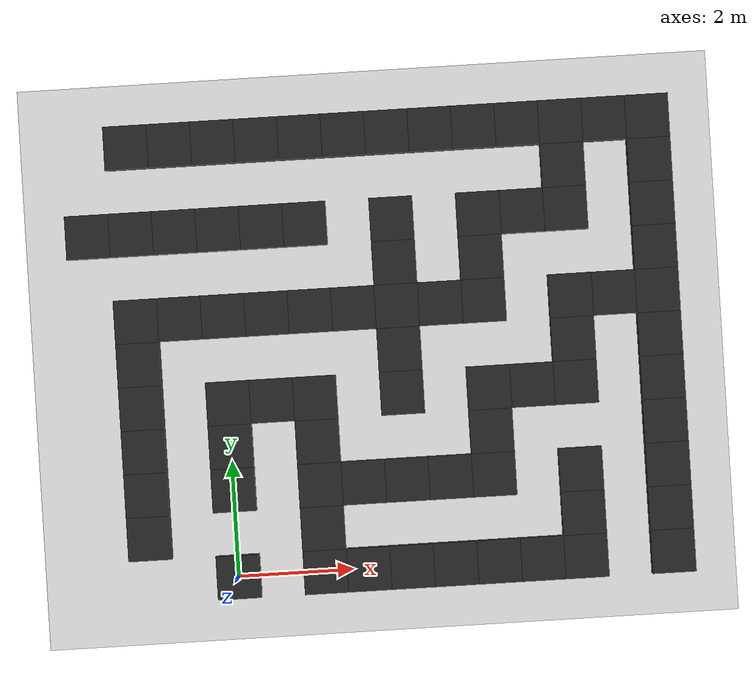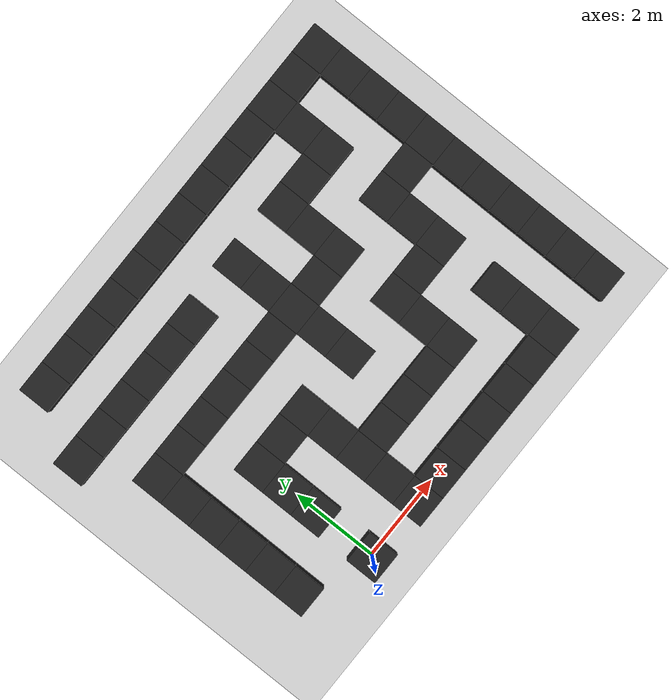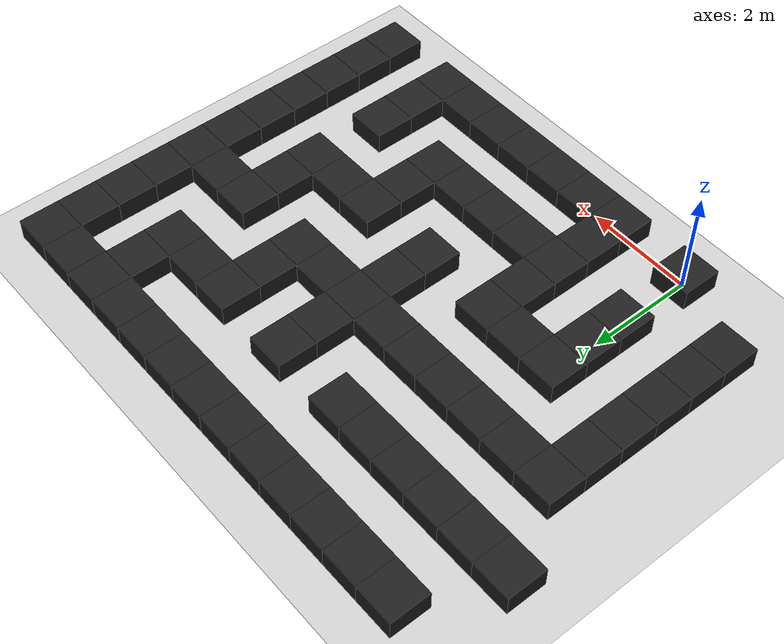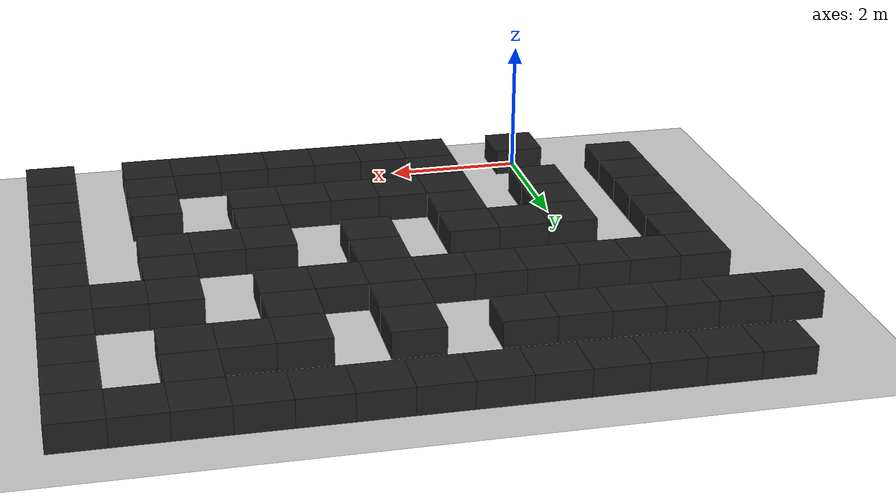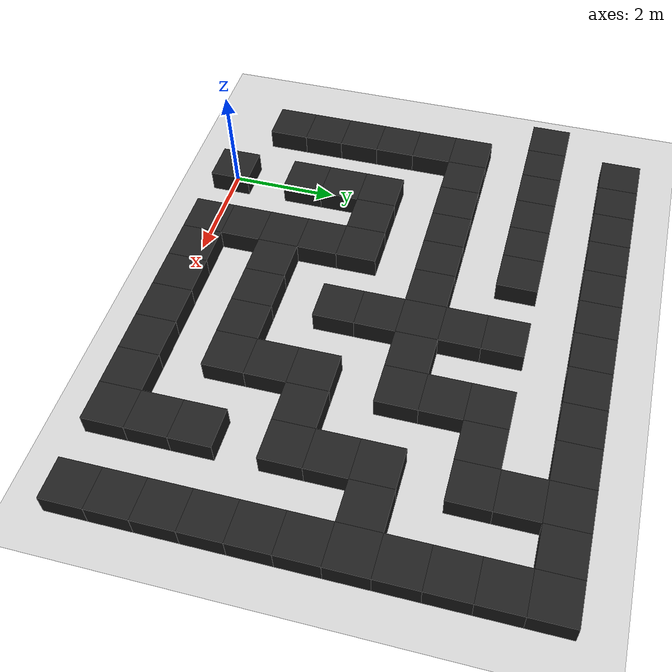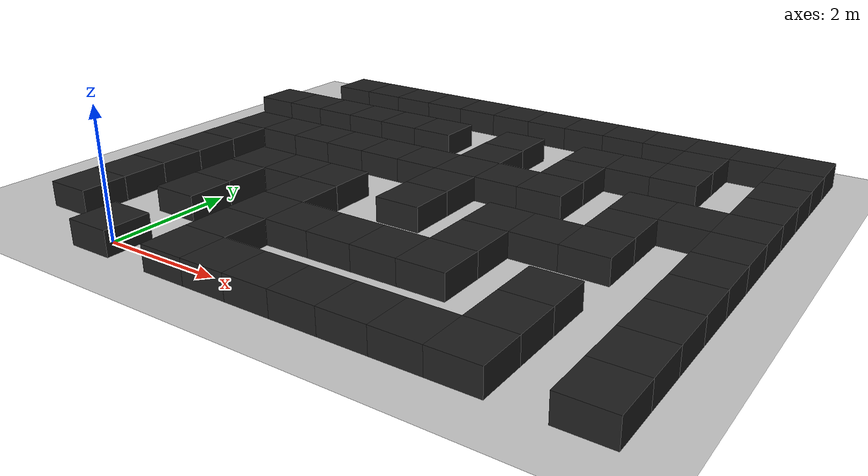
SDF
<sdf version="1.6">
 <world name="maze_gems">
  <include><uri>model://models/sun</uri></include>
  <include><uri>model://models/ground_plane</uri></include>
  <model name="walls">
   <static>true</static>
   <link name="wall_1">
    <pose>7.5 7.5 0.2 0 0 0</pose>
    <visual name="wall_1_visual">
     <geometry><box><size>0.75 0.75 0.4</size></box></geometry>
     <material>
      <script><uri>file://media/materials/scripts/gazebo.material</uri><name>Gazebo/Black</name></script>
     </material>
    </visual>
    <collision name="wall_1_collision"><geometry><box><size>0.75 0.75 0.4</size></box></geometry></collision>
   </link>
   <link name="wall_2">
    <pose>7.5 6.75 0.2 0 0 0</pose>
    <visual name="wall_2_visual">
     <geometry><box><size>0.75 0.75 0.4</size></box></geometry>
     <material>
      <script><uri>file://media/materials/scripts/gazebo.material</uri><name>Gazebo/Black</name></script>
     </material>
    </visual>
    <collision name="wall_2_collision"><geometry><box><size>0.75 0.75 0.4</size></box></geometry></collision>
   </link>
   <link name="wall_3">
    <pose>7.5 6.0 0.2 0 0 0</pose>
    <visual name="wall_3_visual">
     <geometry><box><size>0.75 0.75 0.4</size></box></geometry>
     <material>
      <script><uri>file://media/materials/scripts/gazebo.material</uri><name>Gazebo/Black</name></script>
     </material>
    </visual>
    <collision name="wall_3_collision"><geometry><box><size>0.75 0.75 0.4</size></box></geometry></collision>
   </link>
   <link name="wall_4">
    <pose>7.5 5.25 0.2 0 0 0</pose>
    <visual name="wall_4_visual">
     <geometry><box><size>0.75 0.75 0.4</size></box></geometry>
     <material>
      <script><uri>file://media/materials/scripts/gazebo.material</uri><name>Gazebo/Black</name></script>
     </material>
    </visual>
    <collision name="wall_4_collision"><geometry><box><size>0.75 0.75 0.4</size></box></geometry></collision>
   </link>
   <link name="wall_5">
    <pose>7.5 4.5 0.2 0 0 0</pose>
    <visual name="wall_5_visual">
     <geometry><box><size>0.75 0.75 0.4</size></box></geometry>
     <material>
      <script><uri>file://media/materials/scripts/gazebo.material</uri><name>Gazebo/Black</name></script>
     </material>
    </visual>
    <collision name="wall_5_collision"><geometry><box><size>0.75 0.75 0.4</size></box></geometry></collision>
   </link>
   <link name="wall_6">
    <pose>7.5 3.75 0.2 0 0 0</pose>
    <visual name="wall_6_visual">
     <geometry><box><size>0.75 0.75 0.4</size></box></geometry>
     <material>
      <script><uri>file://media/materials/scripts/gazebo.material</uri><name>Gazebo/Black</name></script>
     </material>
    </visual>
    <collision name="wall_6_collision"><geometry><box><size>0.75 0.75 0.4</size></box></geometry></collision>
   </link>
   <link name="wall_7">
    <pose>7.5 3.0 0.2 0 0 0</pose>
    <visual name="wall_7_visual">
     <geometry><box><size>0.75 0.75 0.4</size></box></geometry>
     <material>
      <script><uri>file://media/materials/scripts/gazebo.material</uri><name>Gazebo/Black</name></script>
     </material>
    </visual>
    <collision name="wall_7_collision"><geometry><box><size>0.75 0.75 0.4</size></box></geometry></collision>
   </link>
   <link name="wall_8">
    <pose>7.5 2.25 0.2 0 0 0</pose>
    <visual name="wall_8_visual">
     <geometry><box><size>0.75 0.75 0.4</size></box></geometry>
     <material>
      <script><uri>file://media/materials/scripts/gazebo.material</uri><name>Gazebo/Black</name></script>
     </material>
    </visual>
    <collision name="wall_8_collision"><geometry><box><size>0.75 0.75 0.4</size></box></geometry></collision>
   </link>
   <link name="wall_9">
    <pose>7.5 1.5 0.2 0 0 0</pose>
    <visual name="wall_9_visual">
     <geometry><box><size>0.75 0.75 0.4</size></box></geometry>
     <material>
      <script><uri>file://media/materials/scripts/gazebo.material</uri><name>Gazebo/Black</name></script>
     </material>
    </visual>
    <collision name="wall_9_collision"><geometry><box><size>0.75 0.75 0.4</size></box></geometry></collision>
   </link>
   <link name="wall_10">
    <pose>7.5 0.75 0.2 0 0 0</pose>
    <visual name="wall_10_visual">
     <geometry><box><size>0.75 0.75 0.4</size></box></geometry>
     <material>
      <script><uri>file://media/materials/scripts/gazebo.material</uri><name>Gazebo/Black</name></script>
     </material>
    </visual>
    <collision name="wall_10_collision"><geometry><box><size>0.75 0.75 0.4</size></box></geometry></collision>
   </link>
   <link name="wall_11">
    <pose>7.5 0.0 0.2 0 0 0</pose>
    <visual name="wall_11_visual">
     <geometry><box><size>0.75 0.75 0.4</size></box></geometry>
     <material>
      <script><uri>file://media/materials/scripts/gazebo.material</uri><name>Gazebo/Black</name></script>
     </material>
    </visual>
    <collision name="wall_11_collision"><geometry><box><size>0.75 0.75 0.4</size></box></geometry></collision>
   </link>
   <link name="wall_22">
    <pose>6.75 7.5 0.2 0 0 0</pose>
    <visual name="wall_22_visual">
     <geometry><box><size>0.75 0.75 0.4</size></box></geometry>
     <material>
      <script><uri>file://media/materials/scripts/gazebo.material</uri><name>Gazebo/Black</name></script>
     </material>
    </visual>
    <collision name="wall_22_collision"><geometry><box><size>0.75 0.75 0.4</size></box></geometry></collision>
   </link>
   <link name="wall_23">
    <pose>6.75 4.5 0.2 0 0 0</pose>
    <visual name="wall_23_visual">
     <geometry><box><size>0.75 0.75 0.4</size></box></geometry>
     <material>
      <script><uri>file://media/materials/scripts/gazebo.material</uri><name>Gazebo/Black</name></script>
     </material>
    </visual>
    <collision name="wall_23_collision"><geometry><box><size>0.75 0.75 0.4</size></box></geometry></collision>
   </link>
   <link name="wall_26">
    <pose>6.0 7.5 0.2 0 0 0</pose>
    <visual name="wall_26_visual">
     <geometry><box><size>0.75 0.75 0.4</size></box></geometry>
     <material>
      <script><uri>file://media/materials/scripts/gazebo.material</uri><name>Gazebo/Black</name></script>
     </material>
    </visual>
    <collision name="wall_26_collision"><geometry><box><size>0.75 0.75 0.4</size></box></geometry></collision>
   </link>
   <link name="wall_27">
    <pose>6.0 6.75 0.2 0 0 0</pose>
    <visual name="wall_27_visual">
     <geometry><box><size>0.75 0.75 0.4</size></box></geometry>
     <material>
      <script><uri>file://media/materials/scripts/gazebo.material</uri><name>Gazebo/Black</name></script>
     </material>
    </visual>
    <collision name="wall_27_collision"><geometry><box><size>0.75 0.75 0.4</size></box></geometry></collision>
   </link>
   <link name="wall_28">
    <pose>6.0 6.0 0.2 0 0 0</pose>
    <visual name="wall_28_visual">
     <geometry><box><size>0.75 0.75 0.4</size></box></geometry>
     <material>
      <script><uri>file://media/materials/scripts/gazebo.material</uri><name>Gazebo/Black</name></script>
     </material>
    </visual>
    <collision name="wall_28_collision"><geometry><box><size>0.75 0.75 0.4</size></box></geometry></collision>
   </link>
   <link name="wall_29">
    <pose>6.0 4.5 0.2 0 0 0</pose>
    <visual name="wall_29_visual">
     <geometry><box><size>0.75 0.75 0.4</size></box></geometry>
     <material>
      <script><uri>file://media/materials/scripts/gazebo.material</uri><name>Gazebo/Black</name></script>
     </material>
    </visual>
    <collision name="wall_29_collision"><geometry><box><size>0.75 0.75 0.4</size></box></geometry></collision>
   </link>
   <link name="wall_30">
    <pose>6.0 3.75 0.2 0 0 0</pose>
    <visual name="wall_30_visual">
     <geometry><box><size>0.75 0.75 0.4</size></box></geometry>
     <material>
      <script><uri>file://media/materials/scripts/gazebo.material</uri><name>Gazebo/Black</name></script>
     </material>
    </visual>
    <collision name="wall_30_collision"><geometry><box><size>0.75 0.75 0.4</size></box></geometry></collision>
   </link>
   <link name="wall_31">
    <pose>6.0 3.0 0.2 0 0 0</pose>
    <visual name="wall_31_visual">
     <geometry><box><size>0.75 0.75 0.4</size></box></geometry>
     <material>
      <script><uri>file://media/materials/scripts/gazebo.material</uri><name>Gazebo/Black</name></script>
     </material>
    </visual>
    <collision name="wall_31_collision"><geometry><box><size>0.75 0.75 0.4</size></box></geometry></collision>
   </link>
   <link name="wall_32">
    <pose>6.0 1.5 0.2 0 0 0</pose>
    <visual name="wall_32_visual">
     <geometry><box><size>0.75 0.75 0.4</size></box></geometry>
     <material>
      <script><uri>file://media/materials/scripts/gazebo.material</uri><name>Gazebo/Black</name></script>
     </material>
    </visual>
    <collision name="wall_32_collision"><geometry><box><size>0.75 0.75 0.4</size></box></geometry></collision>
   </link>
   <link name="wall_33">
    <pose>6.0 0.75 0.2 0 0 0</pose>
    <visual name="wall_33_visual">
     <geometry><box><size>0.75 0.75 0.4</size></box></geometry>
     <material>
      <script><uri>file://media/materials/scripts/gazebo.material</uri><name>Gazebo/Black</name></script>
     </material>
    </visual>
    <collision name="wall_33_collision"><geometry><box><size>0.75 0.75 0.4</size></box></geometry></collision>
   </link>
   <link name="wall_34">
    <pose>6.0 0.0 0.2 0 0 0</pose>
    <visual name="wall_34_visual">
     <geometry><box><size>0.75 0.75 0.4</size></box></geometry>
     <material>
      <script><uri>file://media/materials/scripts/gazebo.material</uri><name>Gazebo/Black</name></script>
     </material>
    </visual>
    <collision name="wall_34_collision"><geometry><box><size>0.75 0.75 0.4</size></box></geometry></collision>
   </link>
   <link name="wall_41">
    <pose>5.25 7.5 0.2 0 0 0</pose>
    <visual name="wall_41_visual">
     <geometry><box><size>0.75 0.75 0.4</size></box></geometry>
     <material>
      <script><uri>file://media/materials/scripts/gazebo.material</uri><name>Gazebo/Black</name></script>
     </material>
    </visual>
    <collision name="wall_41_collision"><geometry><box><size>0.75 0.75 0.4</size></box></geometry></collision>
   </link>
   <link name="wall_42">
    <pose>5.25 6.0 0.2 0 0 0</pose>
    <visual name="wall_42_visual">
     <geometry><box><size>0.75 0.75 0.4</size></box></geometry>
     <material>
      <script><uri>file://media/materials/scripts/gazebo.material</uri><name>Gazebo/Black</name></script>
     </material>
    </visual>
    <collision name="wall_42_collision"><geometry><box><size>0.75 0.75 0.4</size></box></geometry></collision>
   </link>
   <link name="wall_43">
    <pose>5.25 3.0 0.2 0 0 0</pose>
    <visual name="wall_43_visual">
     <geometry><box><size>0.75 0.75 0.4</size></box></geometry>
     <material>
      <script><uri>file://media/materials/scripts/gazebo.material</uri><name>Gazebo/Black</name></script>
     </material>
    </visual>
    <collision name="wall_43_collision"><geometry><box><size>0.75 0.75 0.4</size></box></geometry></collision>
   </link>
   <link name="wall_44">
    <pose>5.25 0.0 0.2 0 0 0</pose>
    <visual name="wall_44_visual">
     <geometry><box><size>0.75 0.75 0.4</size></box></geometry>
     <material>
      <script><uri>file://media/materials/scripts/gazebo.material</uri><name>Gazebo/Black</name></script>
     </material>
    </visual>
    <collision name="wall_44_collision"><geometry><box><size>0.75 0.75 0.4</size></box></geometry></collision>
   </link>
   <link name="wall_49">
    <pose>4.5 7.5 0.2 0 0 0</pose>
    <visual name="wall_49_visual">
     <geometry><box><size>0.75 0.75 0.4</size></box></geometry>
     <material>
      <script><uri>file://media/materials/scripts/gazebo.material</uri><name>Gazebo/Black</name></script>
     </material>
    </visual>
    <collision name="wall_49_collision"><geometry><box><size>0.75 0.75 0.4</size></box></geometry></collision>
   </link>
   <link name="wall_50">
    <pose>4.5 6.0 0.2 0 0 0</pose>
    <visual name="wall_50_visual">
     <geometry><box><size>0.75 0.75 0.4</size></box></geometry>
     <material>
      <script><uri>file://media/materials/scripts/gazebo.material</uri><name>Gazebo/Black</name></script>
     </material>
    </visual>
    <collision name="wall_50_collision"><geometry><box><size>0.75 0.75 0.4</size></box></geometry></collision>
   </link>
   <link name="wall_51">
    <pose>4.5 5.25 0.2 0 0 0</pose>
    <visual name="wall_51_visual">
     <geometry><box><size>0.75 0.75 0.4</size></box></geometry>
     <material>
      <script><uri>file://media/materials/scripts/gazebo.material</uri><name>Gazebo/Black</name></script>
     </material>
    </visual>
    <collision name="wall_51_collision"><geometry><box><size>0.75 0.75 0.4</size></box></geometry></collision>
   </link>
   <link name="wall_52">
    <pose>4.5 4.5 0.2 0 0 0</pose>
    <visual name="wall_52_visual">
     <geometry><box><size>0.75 0.75 0.4</size></box></geometry>
     <material>
      <script><uri>file://media/materials/scripts/gazebo.material</uri><name>Gazebo/Black</name></script>
     </material>
    </visual>
    <collision name="wall_52_collision"><geometry><box><size>0.75 0.75 0.4</size></box></geometry></collision>
   </link>
   <link name="wall_53">
    <pose>4.5 3.0 0.2 0 0 0</pose>
    <visual name="wall_53_visual">
     <geometry><box><size>0.75 0.75 0.4</size></box></geometry>
     <material>
      <script><uri>file://media/materials/scripts/gazebo.material</uri><name>Gazebo/Black</name></script>
     </material>
    </visual>
    <collision name="wall_53_collision"><geometry><box><size>0.75 0.75 0.4</size></box></geometry></collision>
   </link>
   <link name="wall_54">
    <pose>4.5 2.25 0.2 0 0 0</pose>
    <visual name="wall_54_visual">
     <geometry><box><size>0.75 0.75 0.4</size></box></geometry>
     <material>
      <script><uri>file://media/materials/scripts/gazebo.material</uri><name>Gazebo/Black</name></script>
     </material>
    </visual>
    <collision name="wall_54_collision"><geometry><box><size>0.75 0.75 0.4</size></box></geometry></collision>
   </link>
   <link name="wall_55">
    <pose>4.5 1.5 0.2 0 0 0</pose>
    <visual name="wall_55_visual">
     <geometry><box><size>0.75 0.75 0.4</size></box></geometry>
     <material>
      <script><uri>file://media/materials/scripts/gazebo.material</uri><name>Gazebo/Black</name></script>
     </material>
    </visual>
    <collision name="wall_55_collision"><geometry><box><size>0.75 0.75 0.4</size></box></geometry></collision>
   </link>
   <link name="wall_56">
    <pose>4.5 0.0 0.2 0 0 0</pose>
    <visual name="wall_56_visual">
     <geometry><box><size>0.75 0.75 0.4</size></box></geometry>
     <material>
      <script><uri>file://media/materials/scripts/gazebo.material</uri><name>Gazebo/Black</name></script>
     </material>
    </visual>
    <collision name="wall_56_collision"><geometry><box><size>0.75 0.75 0.4</size></box></geometry></collision>
   </link>
   <link name="wall_63">
    <pose>3.75 7.5 0.2 0 0 0</pose>
    <visual name="wall_63_visual">
     <geometry><box><size>0.75 0.75 0.4</size></box></geometry>
     <material>
      <script><uri>file://media/materials/scripts/gazebo.material</uri><name>Gazebo/Black</name></script>
     </material>
    </visual>
    <collision name="wall_63_collision"><geometry><box><size>0.75 0.75 0.4</size></box></geometry></collision>
   </link>
   <link name="wall_64">
    <pose>3.75 4.5 0.2 0 0 0</pose>
    <visual name="wall_64_visual">
     <geometry><box><size>0.75 0.75 0.4</size></box></geometry>
     <material>
      <script><uri>file://media/materials/scripts/gazebo.material</uri><name>Gazebo/Black</name></script>
     </material>
    </visual>
    <collision name="wall_64_collision"><geometry><box><size>0.75 0.75 0.4</size></box></geometry></collision>
   </link>
   <link name="wall_65">
    <pose>3.75 1.5 0.2 0 0 0</pose>
    <visual name="wall_65_visual">
     <geometry><box><size>0.75 0.75 0.4</size></box></geometry>
     <material>
      <script><uri>file://media/materials/scripts/gazebo.material</uri><name>Gazebo/Black</name></script>
     </material>
    </visual>
    <collision name="wall_65_collision"><geometry><box><size>0.75 0.75 0.4</size></box></geometry></collision>
   </link>
   <link name="wall_66">
    <pose>3.75 0.0 0.2 0 0 0</pose>
    <visual name="wall_66_visual">
     <geometry><box><size>0.75 0.75 0.4</size></box></geometry>
     <material>
      <script><uri>file://media/materials/scripts/gazebo.material</uri><name>Gazebo/Black</name></script>
     </material>
    </visual>
    <collision name="wall_66_collision"><geometry><box><size>0.75 0.75 0.4</size></box></geometry></collision>
   </link>
   <link name="wall_71">
    <pose>3.0 7.5 0.2 0 0 0</pose>
    <visual name="wall_71_visual">
     <geometry><box><size>0.75 0.75 0.4</size></box></geometry>
     <material>
      <script><uri>file://media/materials/scripts/gazebo.material</uri><name>Gazebo/Black</name></script>
     </material>
    </visual>
    <collision name="wall_71_collision"><geometry><box><size>0.75 0.75 0.4</size></box></geometry></collision>
   </link>
   <link name="wall_72">
    <pose>3.0 6.0 0.2 0 0 0</pose>
    <visual name="wall_72_visual">
     <geometry><box><size>0.75 0.75 0.4</size></box></geometry>
     <material>
      <script><uri>file://media/materials/scripts/gazebo.material</uri><name>Gazebo/Black</name></script>
     </material>
    </visual>
    <collision name="wall_72_collision"><geometry><box><size>0.75 0.75 0.4</size></box></geometry></collision>
   </link>
   <link name="wall_73">
    <pose>3.0 5.25 0.2 0 0 0</pose>
    <visual name="wall_73_visual">
     <geometry><box><size>0.75 0.75 0.4</size></box></geometry>
     <material>
      <script><uri>file://media/materials/scripts/gazebo.material</uri><name>Gazebo/Black</name></script>
     </material>
    </visual>
    <collision name="wall_73_collision"><geometry><box><size>0.75 0.75 0.4</size></box></geometry></collision>
   </link>
   <link name="wall_74">
    <pose>3.0 4.5 0.2 0 0 0</pose>
    <visual name="wall_74_visual">
     <geometry><box><size>0.75 0.75 0.4</size></box></geometry>
     <material>
      <script><uri>file://media/materials/scripts/gazebo.material</uri><name>Gazebo/Black</name></script>
     </material>
    </visual>
    <collision name="wall_74_collision"><geometry><box><size>0.75 0.75 0.4</size></box></geometry></collision>
   </link>
   <link name="wall_75">
    <pose>3.0 3.75 0.2 0 0 0</pose>
    <visual name="wall_75_visual">
     <geometry><box><size>0.75 0.75 0.4</size></box></geometry>
     <material>
      <script><uri>file://media/materials/scripts/gazebo.material</uri><name>Gazebo/Black</name></script>
     </material>
    </visual>
    <collision name="wall_75_collision"><geometry><box><size>0.75 0.75 0.4</size></box></geometry></collision>
   </link>
   <link name="wall_76">
    <pose>3.0 3.0 0.2 0 0 0</pose>
    <visual name="wall_76_visual">
     <geometry><box><size>0.75 0.75 0.4</size></box></geometry>
     <material>
      <script><uri>file://media/materials/scripts/gazebo.material</uri><name>Gazebo/Black</name></script>
     </material>
    </visual>
    <collision name="wall_76_collision"><geometry><box><size>0.75 0.75 0.4</size></box></geometry></collision>
   </link>
   <link name="wall_77">
    <pose>3.0 1.5 0.2 0 0 0</pose>
    <visual name="wall_77_visual">
     <geometry><box><size>0.75 0.75 0.4</size></box></geometry>
     <material>
      <script><uri>file://media/materials/scripts/gazebo.material</uri><name>Gazebo/Black</name></script>
     </material>
    </visual>
    <collision name="wall_77_collision"><geometry><box><size>0.75 0.75 0.4</size></box></geometry></collision>
   </link>
   <link name="wall_78">
    <pose>3.0 0.0 0.2 0 0 0</pose>
    <visual name="wall_78_visual">
     <geometry><box><size>0.75 0.75 0.4</size></box></geometry>
     <material>
      <script><uri>file://media/materials/scripts/gazebo.material</uri><name>Gazebo/Black</name></script>
     </material>
    </visual>
    <collision name="wall_78_collision"><geometry><box><size>0.75 0.75 0.4</size></box></geometry></collision>
   </link>
   <link name="wall_85">
    <pose>2.25 7.5 0.2 0 0 0</pose>
    <visual name="wall_85_visual">
     <geometry><box><size>0.75 0.75 0.4</size></box></geometry>
     <material>
      <script><uri>file://media/materials/scripts/gazebo.material</uri><name>Gazebo/Black</name></script>
     </material>
    </visual>
    <collision name="wall_85_collision"><geometry><box><size>0.75 0.75 0.4</size></box></geometry></collision>
   </link>
   <link name="wall_86">
    <pose>2.25 4.5 0.2 0 0 0</pose>
    <visual name="wall_86_visual">
     <geometry><box><size>0.75 0.75 0.4</size></box></geometry>
     <material>
      <script><uri>file://media/materials/scripts/gazebo.material</uri><name>Gazebo/Black</name></script>
     </material>
    </visual>
    <collision name="wall_86_collision"><geometry><box><size>0.75 0.75 0.4</size></box></geometry></collision>
   </link>
   <link name="wall_87">
    <pose>2.25 1.5 0.2 0 0 0</pose>
    <visual name="wall_87_visual">
     <geometry><box><size>0.75 0.75 0.4</size></box></geometry>
     <material>
      <script><uri>file://media/materials/scripts/gazebo.material</uri><name>Gazebo/Black</name></script>
     </material>
    </visual>
    <collision name="wall_87_collision"><geometry><box><size>0.75 0.75 0.4</size></box></geometry></collision>
   </link>
   <link name="wall_88">
    <pose>2.25 0.0 0.2 0 0 0</pose>
    <visual name="wall_88_visual">
     <geometry><box><size>0.75 0.75 0.4</size></box></geometry>
     <material>
      <script><uri>file://media/materials/scripts/gazebo.material</uri><name>Gazebo/Black</name></script>
     </material>
    </visual>
    <collision name="wall_88_collision"><geometry><box><size>0.75 0.75 0.4</size></box></geometry></collision>
   </link>
   <link name="wall_94">
    <pose>1.5 7.5 0.2 0 0 0</pose>
    <visual name="wall_94_visual">
     <geometry><box><size>0.75 0.75 0.4</size></box></geometry>
     <material>
      <script><uri>file://media/materials/scripts/gazebo.material</uri><name>Gazebo/Black</name></script>
     </material>
    </visual>
    <collision name="wall_94_collision"><geometry><box><size>0.75 0.75 0.4</size></box></geometry></collision>
   </link>
   <link name="wall_95">
    <pose>1.5 6.0 0.2 0 0 0</pose>
    <visual name="wall_95_visual">
     <geometry><box><size>0.75 0.75 0.4</size></box></geometry>
     <material>
      <script><uri>file://media/materials/scripts/gazebo.material</uri><name>Gazebo/Black</name></script>
     </material>
    </visual>
    <collision name="wall_95_collision"><geometry><box><size>0.75 0.75 0.4</size></box></geometry></collision>
   </link>
   <link name="wall_96">
    <pose>1.5 4.5 0.2 0 0 0</pose>
    <visual name="wall_96_visual">
     <geometry><box><size>0.75 0.75 0.4</size></box></geometry>
     <material>
      <script><uri>file://media/materials/scripts/gazebo.material</uri><name>Gazebo/Black</name></script>
     </material>
    </visual>
    <collision name="wall_96_collision"><geometry><box><size>0.75 0.75 0.4</size></box></geometry></collision>
   </link>
   <link name="wall_97">
    <pose>1.5 3.0 0.2 0 0 0</pose>
    <visual name="wall_97_visual">
     <geometry><box><size>0.75 0.75 0.4</size></box></geometry>
     <material>
      <script><uri>file://media/materials/scripts/gazebo.material</uri><name>Gazebo/Black</name></script>
     </material>
    </visual>
    <collision name="wall_97_collision"><geometry><box><size>0.75 0.75 0.4</size></box></geometry></collision>
   </link>
   <link name="wall_98">
    <pose>1.5 2.25 0.2 0 0 0</pose>
    <visual name="wall_98_visual">
     <geometry><box><size>0.75 0.75 0.4</size></box></geometry>
     <material>
      <script><uri>file://media/materials/scripts/gazebo.material</uri><name>Gazebo/Black</name></script>
     </material>
    </visual>
    <collision name="wall_98_collision"><geometry><box><size>0.75 0.75 0.4</size></box></geometry></collision>
   </link>
   <link name="wall_99">
    <pose>1.5 1.5 0.2 0 0 0</pose>
    <visual name="wall_99_visual">
     <geometry><box><size>0.75 0.75 0.4</size></box></geometry>
     <material>
      <script><uri>file://media/materials/scripts/gazebo.material</uri><name>Gazebo/Black</name></script>
     </material>
    </visual>
    <collision name="wall_99_collision"><geometry><box><size>0.75 0.75 0.4</size></box></geometry></collision>
   </link>
   <link name="wall_100">
    <pose>1.5 0.75 0.2 0 0 0</pose>
    <visual name="wall_100_visual">
     <geometry><box><size>0.75 0.75 0.4</size></box></geometry>
     <material>
      <script><uri>file://media/materials/scripts/gazebo.material</uri><name>Gazebo/Black</name></script>
     </material>
    </visual>
    <collision name="wall_100_collision"><geometry><box><size>0.75 0.75 0.4</size></box></geometry></collision>
   </link>
   <link name="wall_101">
    <pose>1.5 0.0 0.2 0 0 0</pose>
    <visual name="wall_101_visual">
     <geometry><box><size>0.75 0.75 0.4</size></box></geometry>
     <material>
      <script><uri>file://media/materials/scripts/gazebo.material</uri><name>Gazebo/Black</name></script>
     </material>
    </visual>
    <collision name="wall_101_collision"><geometry><box><size>0.75 0.75 0.4</size></box></geometry></collision>
   </link>
   <link name="wall_107">
    <pose>0.75 7.5 0.2 0 0 0</pose>
    <visual name="wall_107_visual">
     <geometry><box><size>0.75 0.75 0.4</size></box></geometry>
     <material>
      <script><uri>file://media/materials/scripts/gazebo.material</uri><name>Gazebo/Black</name></script>
     </material>
    </visual>
    <collision name="wall_107_collision"><geometry><box><size>0.75 0.75 0.4</size></box></geometry></collision>
   </link>
   <link name="wall_108">
    <pose>0.75 6.0 0.2 0 0 0</pose>
    <visual name="wall_108_visual">
     <geometry><box><size>0.75 0.75 0.4</size></box></geometry>
     <material>
      <script><uri>file://media/materials/scripts/gazebo.material</uri><name>Gazebo/Black</name></script>
     </material>
    </visual>
    <collision name="wall_108_collision"><geometry><box><size>0.75 0.75 0.4</size></box></geometry></collision>
   </link>
   <link name="wall_109">
    <pose>0.75 4.5 0.2 0 0 0</pose>
    <visual name="wall_109_visual">
     <geometry><box><size>0.75 0.75 0.4</size></box></geometry>
     <material>
      <script><uri>file://media/materials/scripts/gazebo.material</uri><name>Gazebo/Black</name></script>
     </material>
    </visual>
    <collision name="wall_109_collision"><geometry><box><size>0.75 0.75 0.4</size></box></geometry></collision>
   </link>
   <link name="wall_110">
    <pose>0.75 3.0 0.2 0 0 0</pose>
    <visual name="wall_110_visual">
     <geometry><box><size>0.75 0.75 0.4</size></box></geometry>
     <material>
      <script><uri>file://media/materials/scripts/gazebo.material</uri><name>Gazebo/Black</name></script>
     </material>
    </visual>
    <collision name="wall_110_collision"><geometry><box><size>0.75 0.75 0.4</size></box></geometry></collision>
   </link>
   <link name="wall_115">
    <pose>0.0 7.5 0.2 0 0 0</pose>
    <visual name="wall_115_visual">
     <geometry><box><size>0.75 0.75 0.4</size></box></geometry>
     <material>
      <script><uri>file://media/materials/scripts/gazebo.material</uri><name>Gazebo/Black</name></script>
     </material>
    </visual>
    <collision name="wall_115_collision"><geometry><box><size>0.75 0.75 0.4</size></box></geometry></collision>
   </link>
   <link name="wall_116">
    <pose>0.0 6.0 0.2 0 0 0</pose>
    <visual name="wall_116_visual">
     <geometry><box><size>0.75 0.75 0.4</size></box></geometry>
     <material>
      <script><uri>file://media/materials/scripts/gazebo.material</uri><name>Gazebo/Black</name></script>
     </material>
    </visual>
    <collision name="wall_116_collision"><geometry><box><size>0.75 0.75 0.4</size></box></geometry></collision>
   </link>
   <link name="wall_117">
    <pose>0.0 4.5 0.2 0 0 0</pose>
    <visual name="wall_117_visual">
     <geometry><box><size>0.75 0.75 0.4</size></box></geometry>
     <material>
      <script><uri>file://media/materials/scripts/gazebo.material</uri><name>Gazebo/Black</name></script>
     </material>
    </visual>
    <collision name="wall_117_collision"><geometry><box><size>0.75 0.75 0.4</size></box></geometry></collision>
   </link>
   <link name="wall_118">
    <pose>0.0 3.0 0.2 0 0 0</pose>
    <visual name="wall_118_visual">
     <geometry><box><size>0.75 0.75 0.4</size></box></geometry>
     <material>
      <script><uri>file://media/materials/scripts/gazebo.material</uri><name>Gazebo/Black</name></script>
     </material>
    </visual>
    <collision name="wall_118_collision"><geometry><box><size>0.75 0.75 0.4</size></box></geometry></collision>
   </link>
   <link name="wall_119">
    <pose>0.0 2.25 0.2 0 0 0</pose>
    <visual name="wall_119_visual">
     <geometry><box><size>0.75 0.75 0.4</size></box></geometry>
     <material>
      <script><uri>file://media/materials/scripts/gazebo.material</uri><name>Gazebo/Black</name></script>
     </material>
    </visual>
    <collision name="wall_119_collision"><geometry><box><size>0.75 0.75 0.4</size></box></geometry></collision>
   </link>
   <link name="wall_120">
    <pose>0.0 1.5 0.2 0 0 0</pose>
    <visual name="wall_120_visual">
     <geometry><box><size>0.75 0.75 0.4</size></box></geometry>
     <material>
      <script><uri>file://media/materials/scripts/gazebo.material</uri><name>Gazebo/Black</name></script>
     </material>
    </visual>
    <collision name="wall_120_collision"><geometry><box><size>0.75 0.75 0.4</size></box></geometry></collision>
   </link>
   <link name="wall_121">
    <pose>0.0 0.0 0.2 0 0 0</pose>
    <visual name="wall_121_visual">
     <geometry><box><size>0.75 0.75 0.4</size></box></geometry>
     <material>
      <script><uri>file://media/materials/scripts/gazebo.material</uri><name>Gazebo/Black</name></script>
     </material>
    </visual>
    <collision name="wall_121_collision"><geometry><box><size>0.75 0.75 0.4</size></box></geometry></collision>
   </link>
   <link name="wall_130">
    <pose>-0.75 7.5 0.2 0 0 0</pose>
    <visual name="wall_130_visual">
     <geometry><box><size>0.75 0.75 0.4</size></box></geometry>
     <material>
      <script><uri>file://media/materials/scripts/gazebo.material</uri><name>Gazebo/Black</name></script>
     </material>
    </visual>
    <collision name="wall_130_collision"><geometry><box><size>0.75 0.75 0.4</size></box></geometry></collision>
   </link>
   <link name="wall_131">
    <pose>-0.75 6.0 0.2 0 0 0</pose>
    <visual name="wall_131_visual">
     <geometry><box><size>0.75 0.75 0.4</size></box></geometry>
     <material>
      <script><uri>file://media/materials/scripts/gazebo.material</uri><name>Gazebo/Black</name></script>
     </material>
    </visual>
    <collision name="wall_131_collision"><geometry><box><size>0.75 0.75 0.4</size></box></geometry></collision>
   </link>
   <link name="wall_132">
    <pose>-0.75 4.5 0.2 0 0 0</pose>
    <visual name="wall_132_visual">
     <geometry><box><size>0.75 0.75 0.4</size></box></geometry>
     <material>
      <script><uri>file://media/materials/scripts/gazebo.material</uri><name>Gazebo/Black</name></script>
     </material>
    </visual>
    <collision name="wall_132_collision"><geometry><box><size>0.75 0.75 0.4</size></box></geometry></collision>
   </link>
   <link name="wall_137">
    <pose>-1.5 7.5 0.2 0 0 0</pose>
    <visual name="wall_137_visual">
     <geometry><box><size>0.75 0.75 0.4</size></box></geometry>
     <material>
      <script><uri>file://media/materials/scripts/gazebo.material</uri><name>Gazebo/Black</name></script>
     </material>
    </visual>
    <collision name="wall_137_collision"><geometry><box><size>0.75 0.75 0.4</size></box></geometry></collision>
   </link>
   <link name="wall_138">
    <pose>-1.5 6.0 0.2 0 0 0</pose>
    <visual name="wall_138_visual">
     <geometry><box><size>0.75 0.75 0.4</size></box></geometry>
     <material>
      <script><uri>file://media/materials/scripts/gazebo.material</uri><name>Gazebo/Black</name></script>
     </material>
    </visual>
    <collision name="wall_138_collision"><geometry><box><size>0.75 0.75 0.4</size></box></geometry></collision>
   </link>
   <link name="wall_139">
    <pose>-1.5 4.5 0.2 0 0 0</pose>
    <visual name="wall_139_visual">
     <geometry><box><size>0.75 0.75 0.4</size></box></geometry>
     <material>
      <script><uri>file://media/materials/scripts/gazebo.material</uri><name>Gazebo/Black</name></script>
     </material>
    </visual>
    <collision name="wall_139_collision"><geometry><box><size>0.75 0.75 0.4</size></box></geometry></collision>
   </link>
   <link name="wall_140">
    <pose>-1.5 3.75 0.2 0 0 0</pose>
    <visual name="wall_140_visual">
     <geometry><box><size>0.75 0.75 0.4</size></box></geometry>
     <material>
      <script><uri>file://media/materials/scripts/gazebo.material</uri><name>Gazebo/Black</name></script>
     </material>
    </visual>
    <collision name="wall_140_collision"><geometry><box><size>0.75 0.75 0.4</size></box></geometry></collision>
   </link>
   <link name="wall_141">
    <pose>-1.5 3.0 0.2 0 0 0</pose>
    <visual name="wall_141_visual">
     <geometry><box><size>0.75 0.75 0.4</size></box></geometry>
     <material>
      <script><uri>file://media/materials/scripts/gazebo.material</uri><name>Gazebo/Black</name></script>
     </material>
    </visual>
    <collision name="wall_141_collision"><geometry><box><size>0.75 0.75 0.4</size></box></geometry></collision>
   </link>
   <link name="wall_142">
    <pose>-1.5 2.25 0.2 0 0 0</pose>
    <visual name="wall_142_visual">
     <geometry><box><size>0.75 0.75 0.4</size></box></geometry>
     <material>
      <script><uri>file://media/materials/scripts/gazebo.material</uri><name>Gazebo/Black</name></script>
     </material>
    </visual>
    <collision name="wall_142_collision"><geometry><box><size>0.75 0.75 0.4</size></box></geometry></collision>
   </link>
   <link name="wall_143">
    <pose>-1.5 1.5 0.2 0 0 0</pose>
    <visual name="wall_143_visual">
     <geometry><box><size>0.75 0.75 0.4</size></box></geometry>
     <material>
      <script><uri>file://media/materials/scripts/gazebo.material</uri><name>Gazebo/Black</name></script>
     </material>
    </visual>
    <collision name="wall_143_collision"><geometry><box><size>0.75 0.75 0.4</size></box></geometry></collision>
   </link>
   <link name="wall_144">
    <pose>-1.5 0.75 0.2 0 0 0</pose>
    <visual name="wall_144_visual">
     <geometry><box><size>0.75 0.75 0.4</size></box></geometry>
     <material>
      <script><uri>file://media/materials/scripts/gazebo.material</uri><name>Gazebo/Black</name></script>
     </material>
    </visual>
    <collision name="wall_144_collision"><geometry><box><size>0.75 0.75 0.4</size></box></geometry></collision>
   </link>
   <link name="wall_153">
    <pose>-2.25 6.0 0.2 0 0 0</pose>
    <visual name="wall_153_visual">
     <geometry><box><size>0.75 0.75 0.4</size></box></geometry>
     <material>
      <script><uri>file://media/materials/scripts/gazebo.material</uri><name>Gazebo/Black</name></script>
     </material>
    </visual>
    <collision name="wall_153_collision"><geometry><box><size>0.75 0.75 0.4</size></box></geometry></collision>
   </link>
  </model>
 </world>
</sdf>
